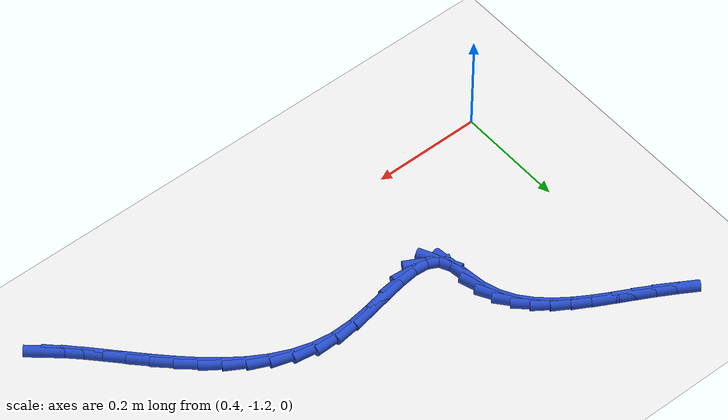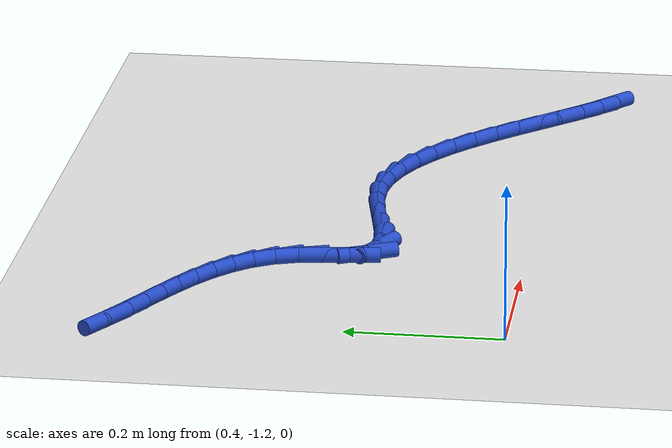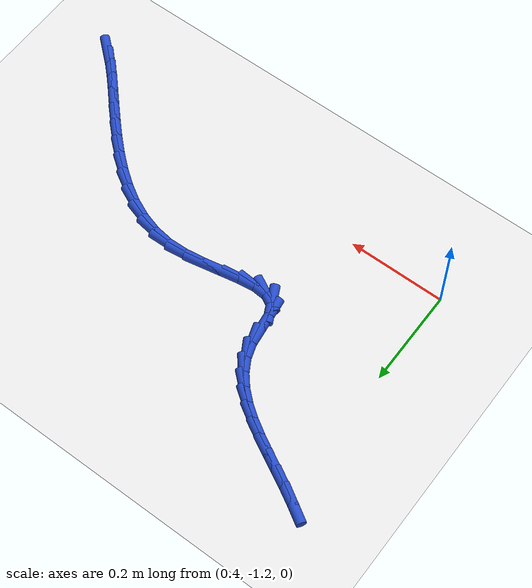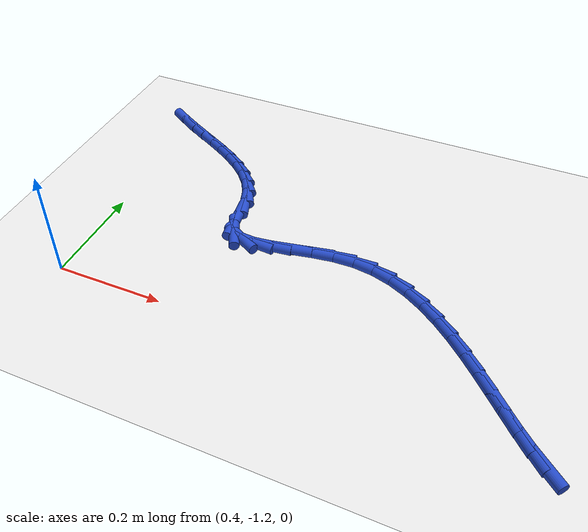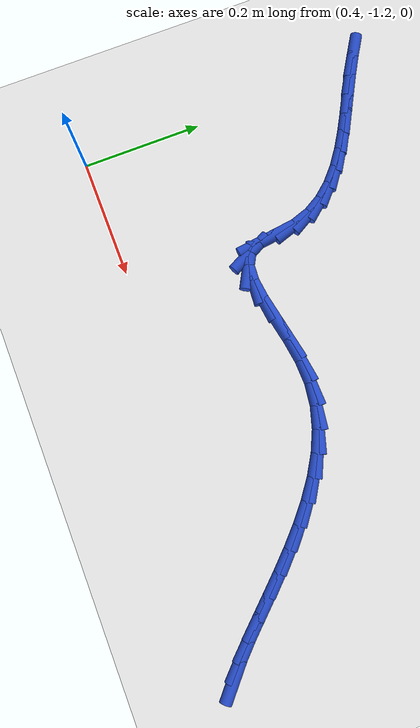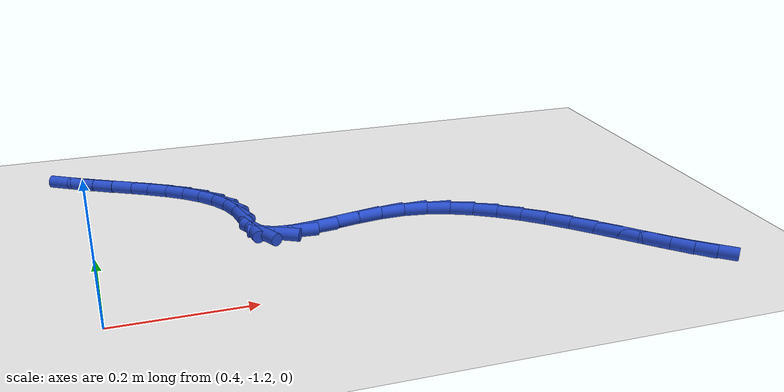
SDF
<sdf version="1.6">
 <world name="default">
  <model name="ground_plane">
   <static>1</static>
   <link name="link">
    <collision name="collision">
     <geometry><plane><normal>0 0 1</normal><size>100 100</size></plane></geometry>
     <surface><friction><ode><mu>100</mu><mu2>50</mu2></ode></friction></surface>
    </collision>
    <visual name="visual">
     <cast_shadows>0</cast_shadows>
     <geometry><plane><normal>0 0 1</normal><size>100 100</size></plane></geometry>
     <material>
      <script><uri>file://media/materials/scripts/gazebo.material</uri><name>Gazebo/WhiteGlow</name></script>
     </material>
    </visual>
   </link>
  </model>
  <model name="line">
   <link name="link_210">
    <pose>1.2483709495345767 -1.259244975927832 0.01 0 1.57 -0.7184061941572661</pose>
    <collision name="collision">
     <geometry><cylinder><radius>0.01</radius><length>0.08</length></cylinder></geometry>
    </collision>
    <visual name="visual">
     <material>
      <script><name>Gazebo/Blue</name><uri>file://media/materials/scripts/gazebo.material</uri></script>
     </material>
     <geometry><cylinder><radius>0.01</radius><length>0.08</length></cylinder></geometry>
    </visual>
   </link>
   <link name="link_211">
    <pose>1.22688663537102 -1.240462271391638 0.01 0 1.57 -0.7789789518512391</pose>
    <collision name="collision">
     <geometry><cylinder><radius>0.01</radius><length>0.08</length></cylinder></geometry>
    </collision>
    <visual name="visual">
     <material>
      <script><name>Gazebo/Blue</name><uri>file://media/materials/scripts/gazebo.material</uri></script>
     </material>
     <geometry><cylinder><radius>0.01</radius><length>0.08</length></cylinder></geometry>
    </visual>
   </link>
   <link name="link_212">
    <pose>1.2044814800573131 -1.2183429321532653 0.01 0 1.57 -0.8112789501524544</pose>
    <collision name="collision">
     <geometry><cylinder><radius>0.01</radius><length>0.08</length></cylinder></geometry>
    </collision>
    <visual name="visual">
     <material>
      <script><name>Gazebo/Blue</name><uri>file://media/materials/scripts/gazebo.material</uri></script>
     </material>
     <geometry><cylinder><radius>0.01</radius><length>0.08</length></cylinder></geometry>
    </visual>
   </link>
   <link name="link_213">
    <pose>1.1810798887150737 -1.193697570145957 0.01 0 1.57 -0.822504622094154</pose>
    <collision name="collision">
     <geometry><cylinder><radius>0.01</radius><length>0.08</length></cylinder></geometry>
    </collision>
    <visual name="visual">
     <material>
      <script><name>Gazebo/Blue</name><uri>file://media/materials/scripts/gazebo.material</uri></script>
     </material>
     <geometry><cylinder><radius>0.01</radius><length>0.08</length></cylinder></geometry>
    </visual>
   </link>
   <link name="link_214">
    <pose>1.1566062664659231 -1.1673367973029602 0.01 0 1.57 -0.8164795213548331</pose>
    <collision name="collision">
     <geometry><cylinder><radius>0.01</radius><length>0.08</length></cylinder></geometry>
    </collision>
    <visual name="visual">
     <material>
      <script><name>Gazebo/Blue</name><uri>file://media/materials/scripts/gazebo.material</uri></script>
     </material>
     <geometry><cylinder><radius>0.01</radius><length>0.08</length></cylinder></geometry>
    </visual>
   </link>
   <link name="link_215">
    <pose>1.1309850184314798 -1.1400712255575203 0.01 0 1.57 -0.7949043314445897</pose>
    <collision name="collision">
     <geometry><cylinder><radius>0.01</radius><length>0.08</length></cylinder></geometry>
    </collision>
    <visual name="visual">
     <material>
      <script><name>Gazebo/Blue</name><uri>file://media/materials/scripts/gazebo.material</uri></script>
     </material>
     <geometry><cylinder><radius>0.01</radius><length>0.08</length></cylinder></geometry>
    </visual>
   </link>
   <link name="link_216">
    <pose>1.1041405497333627 -1.1127114668428812 0.01 0 1.57 -0.7580269558521121</pose>
    <collision name="collision">
     <geometry><cylinder><radius>0.01</radius><length>0.08</length></cylinder></geometry>
    </collision>
    <visual name="visual">
     <material>
      <script><name>Gazebo/Blue</name><uri>file://media/materials/scripts/gazebo.material</uri></script>
     </material>
     <geometry><cylinder><radius>0.01</radius><length>0.08</length></cylinder></geometry>
    </visual>
   </link>
   <link name="link_217">
    <pose>1.0759972654931926 -1.0860681330922903 0.01 0 1.57 -0.7050102461143637</pose>
    <collision name="collision">
     <geometry><cylinder><radius>0.01</radius><length>0.08</length></cylinder></geometry>
    </collision>
    <visual name="visual">
     <material>
      <script><name>Gazebo/Blue</name><uri>file://media/materials/scripts/gazebo.material</uri></script>
     </material>
     <geometry><cylinder><radius>0.01</radius><length>0.08</length></cylinder></geometry>
    </visual>
   </link>
   <link name="link_218">
    <pose>1.0464795708325871 -1.060951836238991 0.01 0 1.57 -0.6341962522933072</pose>
    <collision name="collision">
     <geometry><cylinder><radius>0.01</radius><length>0.08</length></cylinder></geometry>
    </collision>
    <visual name="visual">
     <material>
      <script><name>Gazebo/Blue</name><uri>file://media/materials/scripts/gazebo.material</uri></script>
     </material>
     <geometry><cylinder><radius>0.01</radius><length>0.08</length></cylinder></geometry>
    </visual>
   </link>
   <link name="link_219">
    <pose>1.0155118708731672 -1.0381731882162302 0.01 0 1.57 -0.5434554639360782</pose>
    <collision name="collision">
     <geometry><cylinder><radius>0.01</radius><length>0.08</length></cylinder></geometry>
    </collision>
    <visual name="visual">
     <material>
      <script><name>Gazebo/Blue</name><uri>file://media/materials/scripts/gazebo.material</uri></script>
     </material>
     <geometry><cylinder><radius>0.01</radius><length>0.08</length></cylinder></geometry>
    </visual>
   </link>
   <link name="link_220">
    <pose>0.983018570736551 -1.0185428009572517 0.01 0 1.57 -0.43084934012531517</pose>
    <collision name="collision">
     <geometry><cylinder><radius>0.01</radius><length>0.08</length></cylinder></geometry>
    </collision>
    <visual name="visual">
     <material>
      <script><name>Gazebo/Blue</name><uri>file://media/materials/scripts/gazebo.material</uri></script>
     </material>
     <geometry><cylinder><radius>0.01</radius><length>0.08</length></cylinder></geometry>
    </visual>
   </link>
   <link name="link_221">
    <pose>0.9489240755443594 -1.0028712863953027 0.01 0 1.57 -0.29582756877286326</pose>
    <collision name="collision">
     <geometry><cylinder><radius>0.01</radius><length>0.08</length></cylinder></geometry>
    </collision>
    <visual name="visual">
     <material>
      <script><name>Gazebo/Blue</name><uri>file://media/materials/scripts/gazebo.material</uri></script>
     </material>
     <geometry><cylinder><radius>0.01</radius><length>0.08</length></cylinder></geometry>
    </visual>
   </link>
   <link name="link_222">
    <pose>0.9131527904182096 -0.9919692564636268 0.01 0 1.57 -0.14088903689447768</pose>
    <collision name="collision">
     <geometry><cylinder><radius>0.01</radius><length>0.08</length></cylinder></geometry>
    </collision>
    <visual name="visual">
     <material>
      <script><name>Gazebo/Blue</name><uri>file://media/materials/scripts/gazebo.material</uri></script>
     </material>
     <geometry><cylinder><radius>0.01</radius><length>0.08</length></cylinder></geometry>
    </visual>
   </link>
   <link name="link_223">
    <pose>0.8756291204797239 -0.9866473230954707 0.01 0 1.57 0.021608422508736</pose>
    <collision name="collision">
     <geometry><cylinder><radius>0.01</radius><length>0.08</length></cylinder></geometry>
    </collision>
    <visual name="visual">
     <material>
      <script><name>Gazebo/Blue</name><uri>file://media/materials/scripts/gazebo.material</uri></script>
     </material>
     <geometry><cylinder><radius>0.01</radius><length>0.08</length></cylinder></geometry>
    </visual>
   </link>
   <link name="link_224">
    <pose>0.8363843963164757 -0.9874954716874943 0.01 0 1.57 0.1376569139134778</pose>
    <collision name="collision">
     <geometry><cylinder><radius>0.01</radius><length>0.08</length></cylinder></geometry>
    </collision>
    <visual name="visual">
     <material>
      <script><name>Gazebo/Blue</name><uri>file://media/materials/scripts/gazebo.material</uri></script>
     </material>
     <geometry><cylinder><radius>0.01</radius><length>0.08</length></cylinder></geometry>
    </visual>
   </link>
   <link name="link_225">
    <pose>0.7964564982046741 -0.9930268056726841 0.01 0 1.57 0.192063508910053</pose>
    <collision name="collision">
     <geometry><cylinder><radius>0.01</radius><length>0.08</length></cylinder></geometry>
    </collision>
    <visual name="visual">
     <material>
      <script><name>Gazebo/Blue</name><uri>file://media/materials/scripts/gazebo.material</uri></script>
     </material>
     <geometry><cylinder><radius>0.01</radius><length>0.08</length></cylinder></geometry>
    </visual>
   </link>
   <link name="link_226">
    <pose>0.7574356074551302 -1.0006148284521088 0.01 0 1.57 0.18956020569059776</pose>
    <collision name="collision">
     <geometry><cylinder><radius>0.01</radius><length>0.08</length></cylinder></geometry>
    </collision>
    <visual name="visual">
     <material>
      <script><name>Gazebo/Blue</name><uri>file://media/materials/scripts/gazebo.material</uri></script>
     </material>
     <geometry><cylinder><radius>0.01</radius><length>0.08</length></cylinder></geometry>
    </visual>
   </link>
   <link name="link_227">
    <pose>0.7209175896584782 -1.0076213146683133 0.01 0 1.57 0.11627780778199033</pose>
    <collision name="collision">
     <geometry><cylinder><radius>0.01</radius><length>0.08</length></cylinder></geometry>
    </collision>
    <visual name="visual">
     <material>
      <script><name>Gazebo/Blue</name><uri>file://media/materials/scripts/gazebo.material</uri></script>
     </material>
     <geometry><cylinder><radius>0.01</radius><length>0.08</length></cylinder></geometry>
    </visual>
   </link>
   <link name="link_228">
    <pose>0.6884983104053554 -1.0114080389638413 0.01 0 1.57 -0.07734913941754805</pose>
    <collision name="collision">
     <geometry><cylinder><radius>0.01</radius><length>0.08</length></cylinder></geometry>
    </collision>
    <visual name="visual">
     <material>
      <script><name>Gazebo/Blue</name><uri>file://media/materials/scripts/gazebo.material</uri></script>
     </material>
     <geometry><cylinder><radius>0.01</radius><length>0.08</length></cylinder></geometry>
    </visual>
   </link>
   <link name="link_229">
    <pose>0.6617736352863948 -1.0093367759812377 0.01 0 1.57 -0.49803710735123735</pose>
    <collision name="collision">
     <geometry><cylinder><radius>0.01</radius><length>0.08</length></cylinder></geometry>
    </collision>
    <visual name="visual">
     <material>
      <script><name>Gazebo/Blue</name><uri>file://media/materials/scripts/gazebo.material</uri></script>
     </material>
     <geometry><cylinder><radius>0.01</radius><length>0.08</length></cylinder></geometry>
    </visual>
   </link>
   <link name="link_230">
    <pose>0.6423394298922331 -0.9987693003630467 0.01 0 1.57 -1.1142570129316232</pose>
    <collision name="collision">
     <geometry><cylinder><radius>0.01</radius><length>0.08</length></cylinder></geometry>
    </collision>
    <visual name="visual">
     <material>
      <script><name>Gazebo/Blue</name><uri>file://media/materials/scripts/gazebo.material</uri></script>
     </material>
     <geometry><cylinder><radius>0.01</radius><length>0.08</length></cylinder></geometry>
    </visual>
   </link>
   <link name="link_231">
    <pose>0.6317206405484781 -0.9771488648655074 0.01 0 1.57 -1.4472528822137847</pose>
    <collision name="collision">
     <geometry><cylinder><radius>0.01</radius><length>0.08</length></cylinder></geometry>
    </collision>
    <visual name="visual">
     <material>
      <script><name>Gazebo/Blue</name><uri>file://media/materials/scripts/gazebo.material</uri></script>
     </material>
     <geometry><cylinder><radius>0.01</radius><length>0.08</length></cylinder></geometry>
    </visual>
   </link>
   <link name="link_232">
    <pose>0.6278573394292248 -0.9460373320977666 0.01 0 1.57 -1.4401240314658406</pose>
    <collision name="collision">
     <geometry><cylinder><radius>0.01</radius><length>0.08</length></cylinder></geometry>
    </collision>
    <visual name="visual">
     <material>
      <script><name>Gazebo/Blue</name><uri>file://media/materials/scripts/gazebo.material</uri></script>
     </material>
     <geometry><cylinder><radius>0.01</radius><length>0.08</length></cylinder></geometry>
    </visual>
   </link>
   <link name="link_233">
    <pose>0.6235091442312936 -0.9129513735930762 0.01 0 1.57 -1.2516997845398274</pose>
    <collision name="collision">
     <geometry><cylinder><radius>0.01</radius><length>0.08</length></cylinder></geometry>
    </collision>
    <visual name="visual">
     <material>
      <script><name>Gazebo/Blue</name><uri>file://media/materials/scripts/gazebo.material</uri></script>
     </material>
     <geometry><cylinder><radius>0.01</radius><length>0.08</length></cylinder></geometry>
    </visual>
   </link>
   <link name="link_234">
    <pose>0.6136811860323131 -0.8832045697224723 0.01 0 1.57 -1.0490863822671133</pose>
    <collision name="collision">
     <geometry><cylinder><radius>0.01</radius><length>0.08</length></cylinder></geometry>
    </collision>
    <visual name="visual">
     <material>
      <script><name>Gazebo/Blue</name><uri>file://media/materials/scripts/gazebo.material</uri></script>
     </material>
     <geometry><cylinder><radius>0.01</radius><length>0.08</length></cylinder></geometry>
    </visual>
   </link>
   <link name="link_235">
    <pose>0.5985577797400957 -0.8568954242235268 0.01 0 1.57 -0.8721248914924057</pose>
    <collision name="collision">
     <geometry><cylinder><radius>0.01</radius><length>0.08</length></cylinder></geometry>
    </collision>
    <visual name="visual">
     <material>
      <script><name>Gazebo/Blue</name><uri>file://media/materials/scripts/gazebo.material</uri></script>
     </material>
     <geometry><cylinder><radius>0.01</radius><length>0.08</length></cylinder></geometry>
    </visual>
   </link>
   <link name="link_236">
    <pose>0.5789217654146432 -0.8335197677798964 0.01 0 1.57 -0.7308522359956909</pose>
    <collision name="collision">
     <geometry><cylinder><radius>0.01</radius><length>0.08</length></cylinder></geometry>
    </collision>
    <visual name="visual">
     <material>
      <script><name>Gazebo/Blue</name><uri>file://media/materials/scripts/gazebo.material</uri></script>
     </material>
     <geometry><cylinder><radius>0.01</radius><length>0.08</length></cylinder></geometry>
    </visual>
   </link>
   <link name="link_237">
    <pose>0.5555559831159596 -0.8125734310752403 0.01 0 1.57 -0.6259235455204067</pose>
    <collision name="collision">
     <geometry><cylinder><radius>0.01</radius><length>0.08</length></cylinder></geometry>
    </collision>
    <visual name="visual">
     <material>
      <script><name>Gazebo/Blue</name><uri>file://media/materials/scripts/gazebo.material</uri></script>
     </material>
     <geometry><cylinder><radius>0.01</radius><length>0.08</length></cylinder></geometry>
    </visual>
   </link>
   <link name="link_238">
    <pose>0.5292432729040464 -0.7935522447932147 0.01 0 1.57 -0.553588997205329</pose>
    <collision name="collision">
     <geometry><cylinder><radius>0.01</radius><length>0.08</length></cylinder></geometry>
    </collision>
    <visual name="visual">
     <material>
      <script><name>Gazebo/Blue</name><uri>file://media/materials/scripts/gazebo.material</uri></script>
     </material>
     <geometry><cylinder><radius>0.01</radius><length>0.08</length></cylinder></geometry>
    </visual>
   </link>
   <link name="link_239">
    <pose>0.5007664748389075 -0.7759520396174782 0.01 0 1.57 -0.5095415980034447</pose>
    <collision name="collision">
     <geometry><cylinder><radius>0.01</radius><length>0.08</length></cylinder></geometry>
    </collision>
    <visual name="visual">
     <material>
      <script><name>Gazebo/Blue</name><uri>file://media/materials/scripts/gazebo.material</uri></script>
     </material>
     <geometry><cylinder><radius>0.01</radius><length>0.08</length></cylinder></geometry>
    </visual>
   </link>
   <link name="link_240">
    <pose>0.4709084289805441 -0.7592686462316872 0.01 0 1.57 -0.49065515579993474</pose>
    <collision name="collision">
     <geometry><cylinder><radius>0.01</radius><length>0.08</length></cylinder></geometry>
    </collision>
    <visual name="visual">
     <material>
      <script><name>Gazebo/Blue</name><uri>file://media/materials/scripts/gazebo.material</uri></script>
     </material>
     <geometry><cylinder><radius>0.01</radius><length>0.08</length></cylinder></geometry>
    </visual>
   </link>
   <link name="link_241">
    <pose>0.4404519753889605 -0.7429978953195007 0.01 0 1.57 -0.49552055849199167</pose>
    <collision name="collision">
     <geometry><cylinder><radius>0.01</radius><length>0.08</length></cylinder></geometry>
    </collision>
    <visual name="visual">
     <material>
      <script><name>Gazebo/Blue</name><uri>file://media/materials/scripts/gazebo.material</uri></script>
     </material>
     <geometry><cylinder><radius>0.01</radius><length>0.08</length></cylinder></geometry>
    </visual>
   </link>
   <link name="link_242">
    <pose>0.4101797489916202 -0.7266357468130494 0.01 0 1.57 -0.5192417522539671</pose>
    <collision name="collision">
     <geometry><cylinder><radius>0.01</radius><length>0.08</length></cylinder></geometry>
    </collision>
    <visual name="visual">
     <material>
      <script><name>Gazebo/Blue</name><uri>file://media/materials/scripts/gazebo.material</uri></script>
     </material>
     <geometry><cylinder><radius>0.01</radius><length>0.08</length></cylinder></geometry>
    </visual>
   </link>
   <link name="link_243">
    <pose>0.38070133151853536 -0.7097871967931643 0.01 0 1.57 -0.547724876046781</pose>
    <collision name="collision">
     <geometry><cylinder><radius>0.01</radius><length>0.08</length></cylinder></geometry>
    </collision>
    <visual name="visual">
     <material>
      <script><name>Gazebo/Blue</name><uri>file://media/materials/scripts/gazebo.material</uri></script>
     </material>
     <geometry><cylinder><radius>0.01</radius><length>0.08</length></cylinder></geometry>
    </visual>
   </link>
  </model>
 </world>
</sdf>
